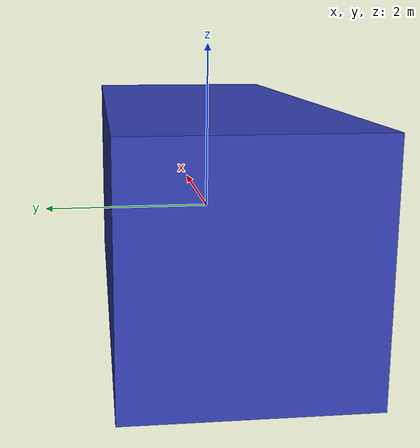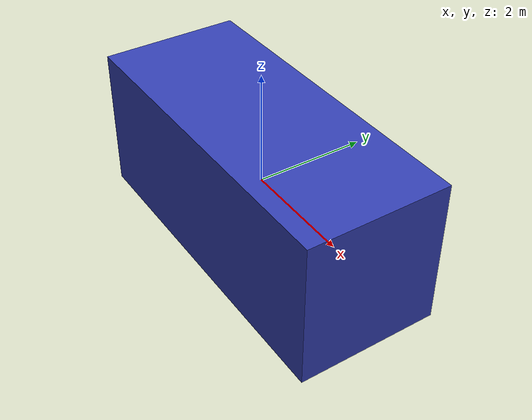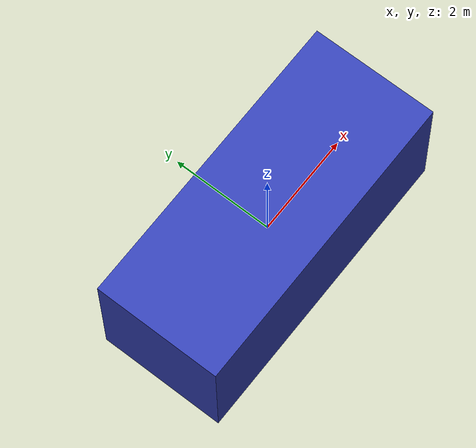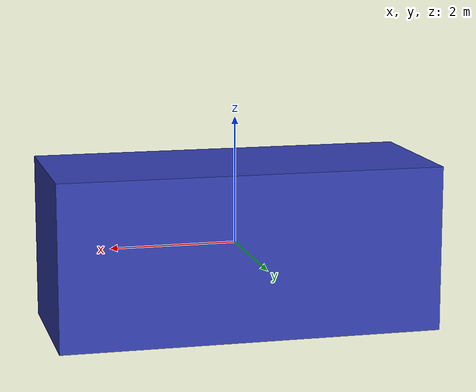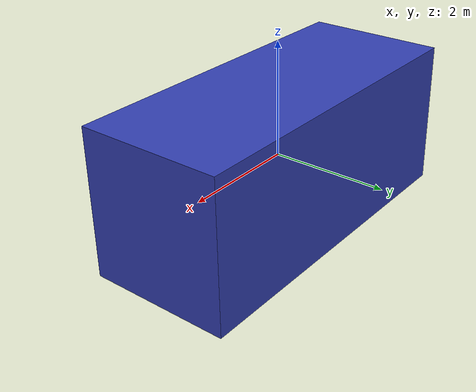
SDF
<?xml version="1.0" ?>
<sdf version="1.7">
  <model name="container">
    <static>true</static>

    <link name="link">
      <!-- collision OFF by default (enable later if you want) -->
      <visual name="visual">
        <geometry>
          <box><size>6.0 2.5 2.6</size></box>
        </geometry>
        <material>
          <ambient>0.20 0.25 0.70 1</ambient>
          <diffuse>0.20 0.25 0.70 1</diffuse>
        </material>
      </visual>
    </link>
  </model>
</sdf>
